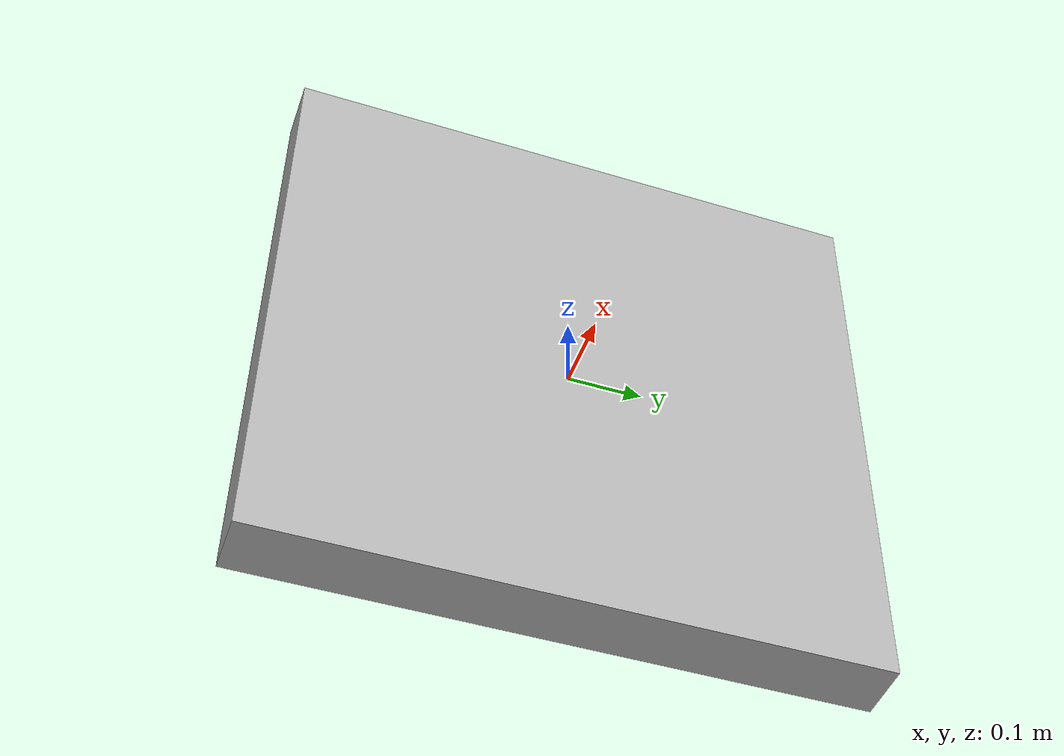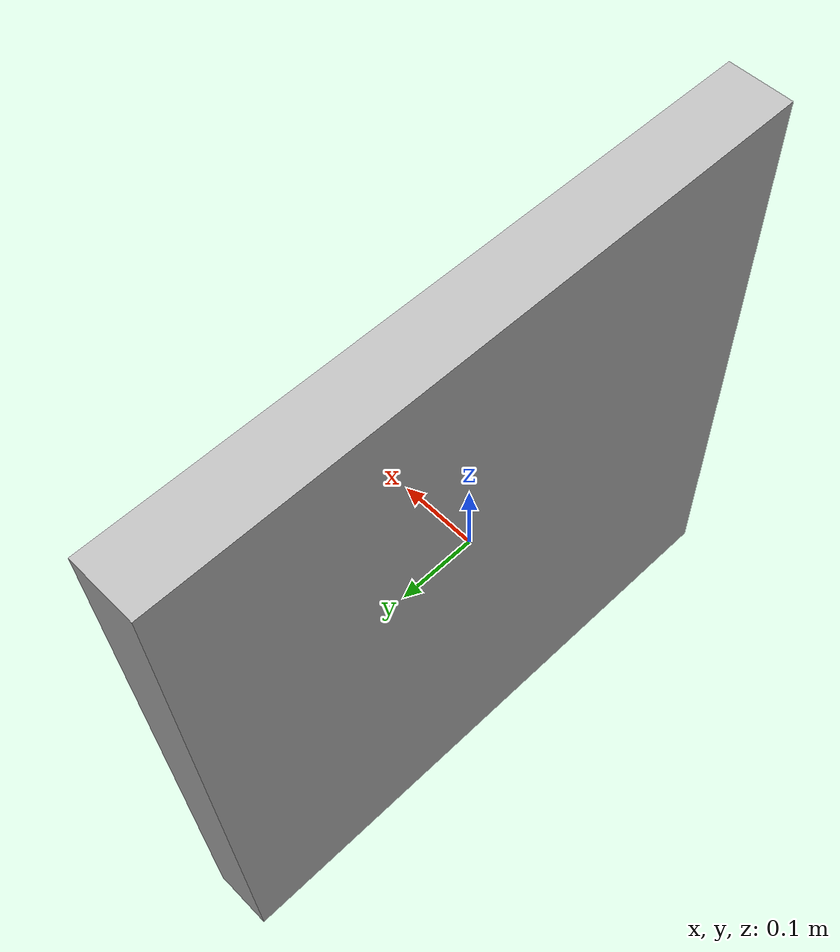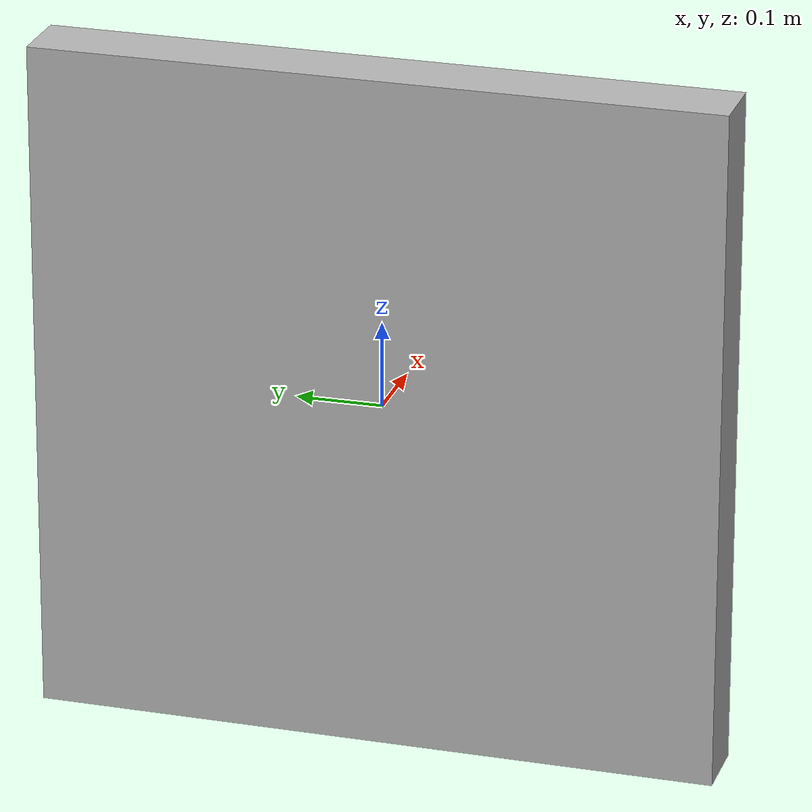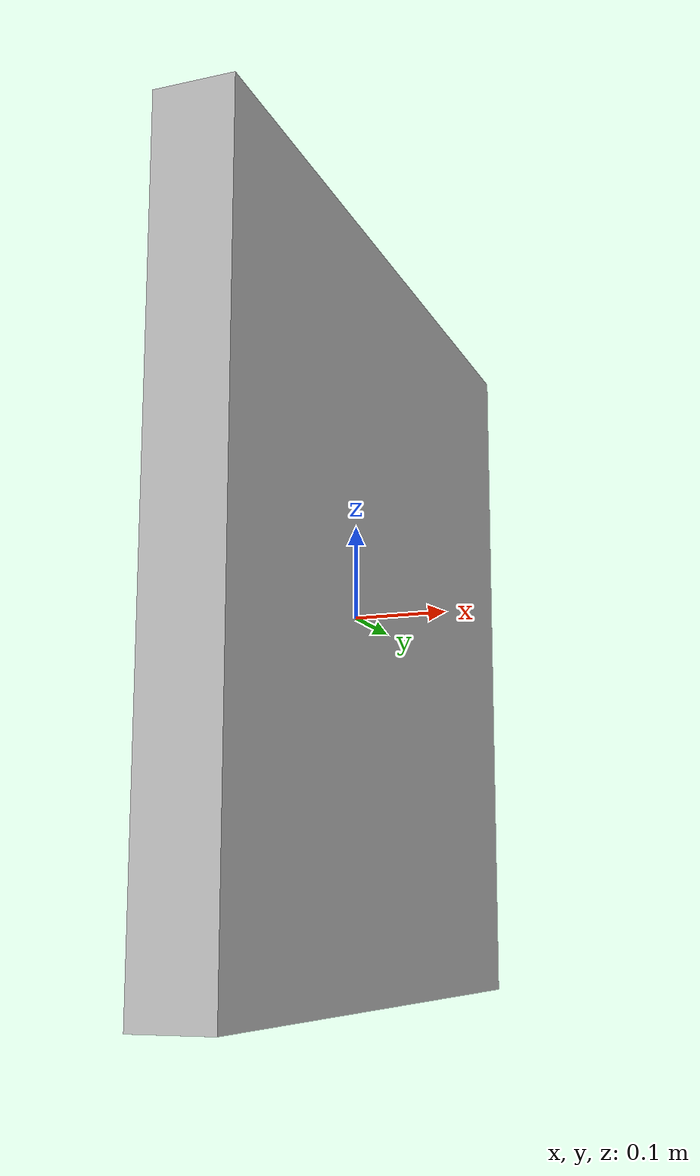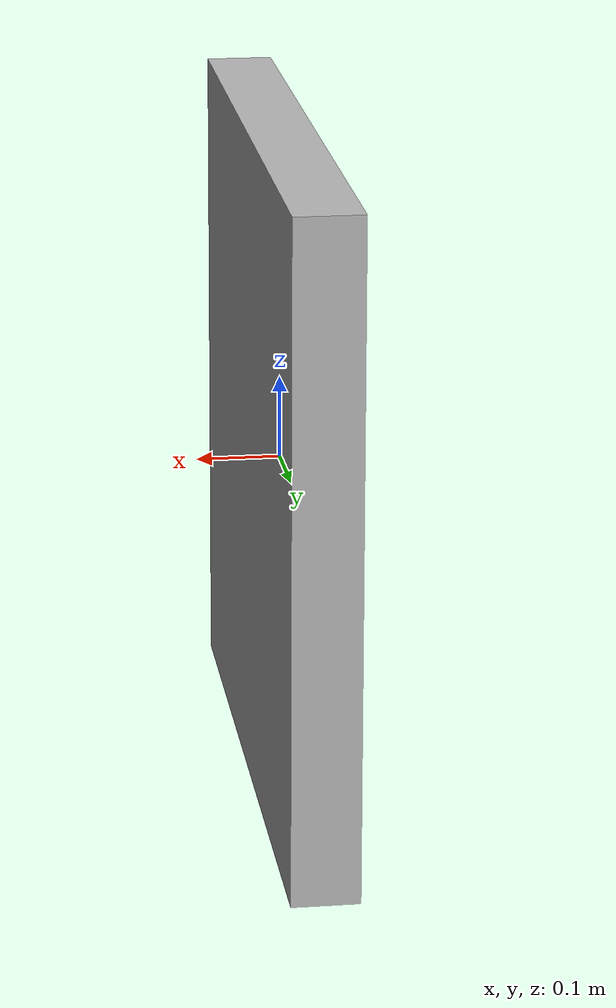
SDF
<?xml version="1.0" ?>
<sdf version="1.5">
  <model name="charuco_board">
    <static>true</static>
    <link name="link">
      <collision name="collision">
        <geometry>
          <box>
            <size>0.08 0.8 0.8</size>
          </box>
        </geometry>
        <surface>
          <friction>
            <ode>
              <mu>100</mu>
              <mu2>50</mu2>
            </ode>
          </friction>
        </surface>
      </collision>

      <visual name="visual">
        <geometry>
          <box>
            <size>0.08 0.8 0.8</size>
          </box>
        </geometry>
        <material>
          <script>
            <uri>model://charuco_board/materials/scripts</uri>
            <uri>model://charuco_board/materials/textures</uri>
            <name>charuco_board/Diffuse</name>
          </script>
        </material>
      </visual>
    </link>
  </model>
</sdf>
